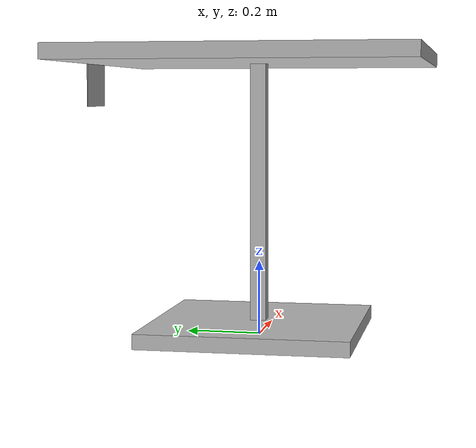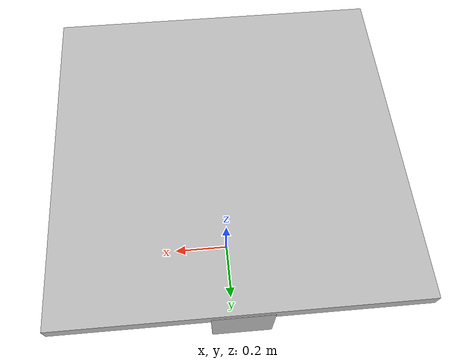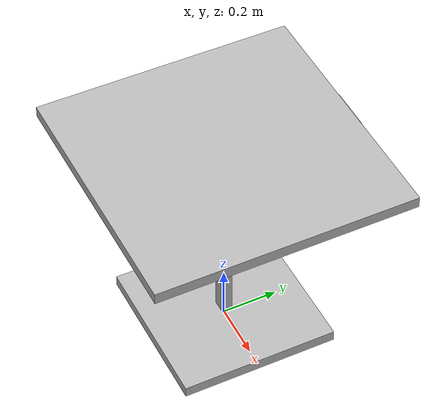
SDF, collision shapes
<?xml version="1.0" ?>
<sdf version="1.5">
  <model name="table_ArUco16">

    <include>
      <uri>model://cafe_table</uri>
      <pose>0 0 0 0 0 0</pose>
    </include>

    <include>
      <uri>model://ArUco_16</uri>
      <pose>0 0.46 0.595 0 0 0</pose>
    </include>

  </model>
</sdf>

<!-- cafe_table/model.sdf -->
<sdf version="1.5">
  <model name="cafe_table">
    <static>true</static>
    <link name="link">
      <collision name="surface">
        <pose>0 0 0.755 0 0 0</pose>
        <geometry>
          <box>
            <size>0.913 0.913 0.04</size>
          </box>
        </geometry>
      </collision>

      <collision name="column">
        <pose>0 0 0.37 0 0 0</pose>
        <geometry>
          <box>
            <size>0.042 0.042 0.74</size>
          </box>
        </geometry>
      </collision>

      <collision name="base">
        <pose>0 0 0.02 0 0 0</pose>
        <geometry>
          <box>
            <size>0.56 0.56 0.04</size>
          </box>
        </geometry>
      </collision>

      <visual name="visual">
        <geometry>
          <mesh>
            <uri>model://../model_source/models/cafe_table/meshes/cafe_table.dae</uri>
          </mesh>
        </geometry>
      </visual>
    </link>
  </model>
</sdf>

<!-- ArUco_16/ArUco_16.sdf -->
<sdf version='1.4'>
  <model name="ArUco_16">
	<static>true</static>
          <link name='ArUco16_link'>
            <pose>0 0 .1 0 0 0</pose>

            <collision name='collision'>
              <geometry>
                <box>
                  <size>0.15 0.002 0.15</size>
                </box>
              </geometry>
            </collision>

            <visual name='visual'>
	      <lighting>0</lighting>
              <geometry>
                <mesh>
            	  <uri>model://ArUco_16/meshes/Aruco16.dae</uri>
		  <scale>1.6 1.6 1.6</scale>
          	</mesh>
              </geometry>
            </visual>
          </link>
  </model>
</sdf>
